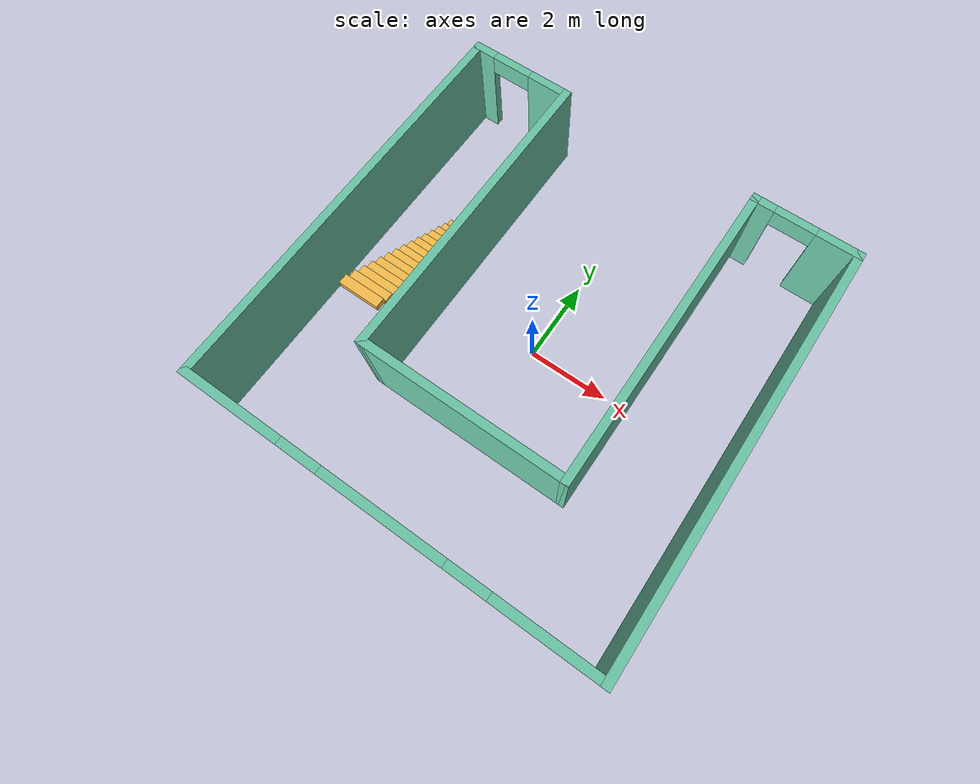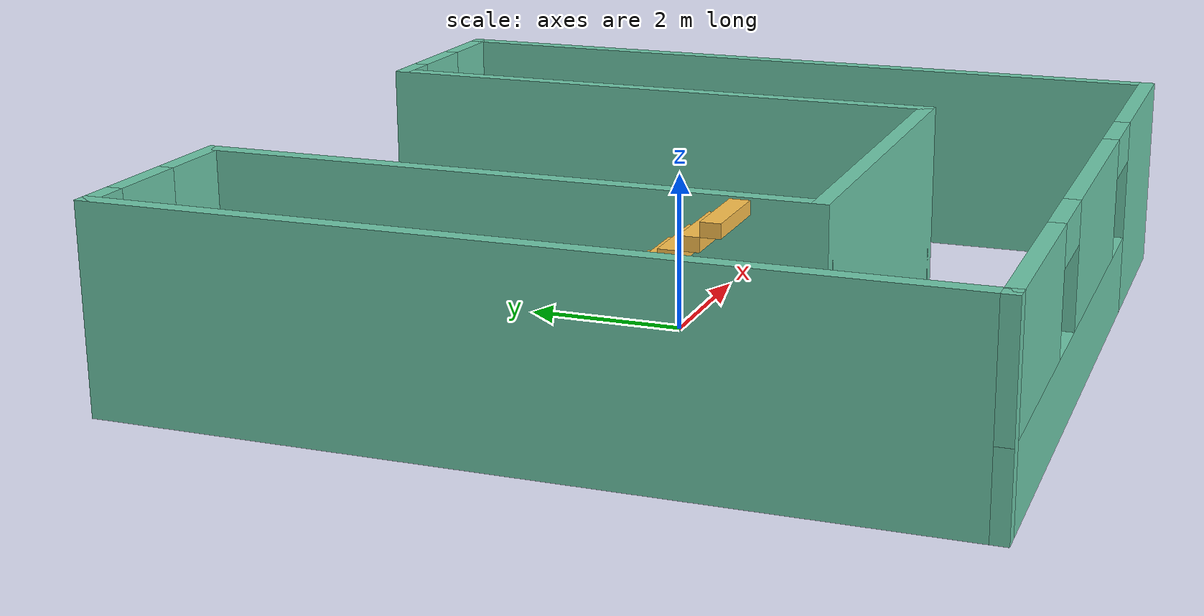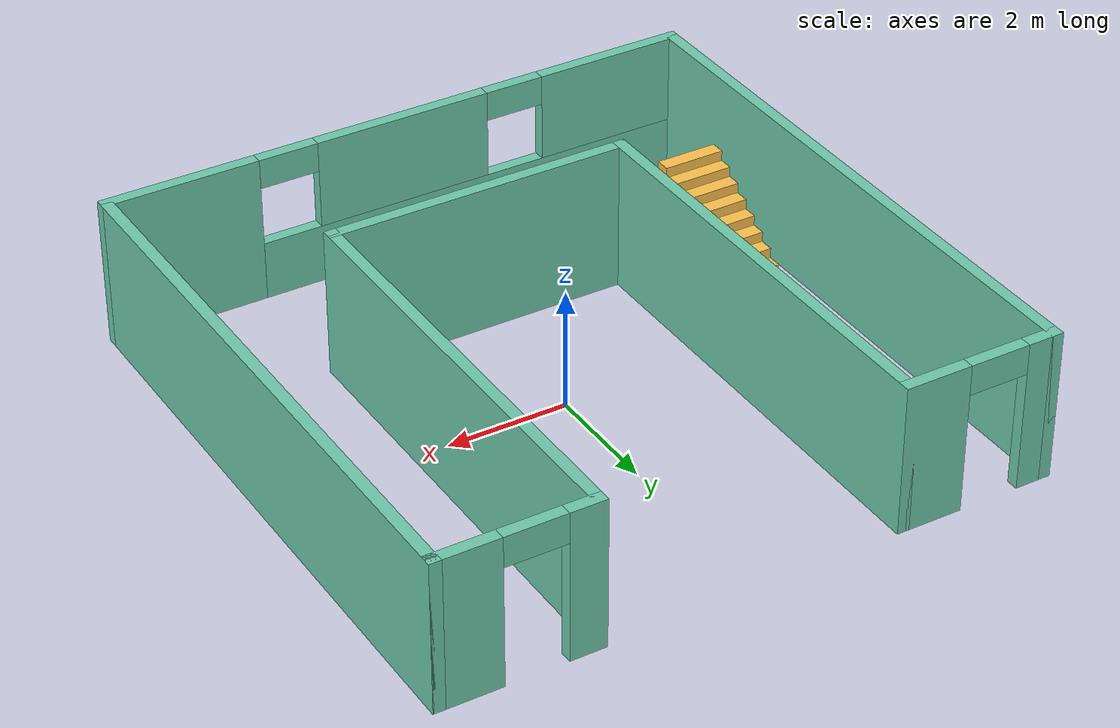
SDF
<?xml version='1.0'?>
<sdf version='1.7'>
  <model name='mybuilding'>
    <pose>0 0 0 0 -0 0</pose>
    <link name='Stairs_0'>
      <visual name='Stairs_0_Visual_0'>
        <pose>-3.2 1.63333 0.083333 0 -0 0</pose>
        <geometry>
          <box>
            <size>1 0.233333 0.166667</size>
          </box>
        </geometry>
        <material>
          <script>
            <uri>file://media/materials/scripts/gazebo.material</uri>
            <name>Gazebo/Grey</name>
          </script>
          <ambient>1 0.764706 0.305882 1</ambient>
        </material>
        <meta>
          <layer>0</layer>
        </meta>
      </visual>
      <collision name='Stairs_0_Collision_0'>
        <geometry>
          <box>
            <size>1 0.233333 0.166667</size>
          </box>
        </geometry>
        <pose>-3.2 1.63333 0.083333 0 -0 0</pose>
      </collision>
      <visual name='Stairs_0_Visual_1'>
        <pose>-3.2 1.4 0.25 0 -0 0</pose>
        <geometry>
          <box>
            <size>1 0.233333 0.166667</size>
          </box>
        </geometry>
        <material>
          <script>
            <uri>file://media/materials/scripts/gazebo.material</uri>
            <name>Gazebo/Grey</name>
          </script>
          <ambient>1 0.764706 0.305882 1</ambient>
        </material>
        <meta>
          <layer>0</layer>
        </meta>
      </visual>
      <collision name='Stairs_0_Collision_1'>
        <geometry>
          <box>
            <size>1 0.233333 0.166667</size>
          </box>
        </geometry>
        <pose>-3.2 1.4 0.25 0 -0 0</pose>
      </collision>
      <visual name='Stairs_0_Visual_2'>
        <pose>-3.2 1.16667 0.416667 0 -0 0</pose>
        <geometry>
          <box>
            <size>1 0.233333 0.166667</size>
          </box>
        </geometry>
        <material>
          <script>
            <uri>file://media/materials/scripts/gazebo.material</uri>
            <name>Gazebo/Grey</name>
          </script>
          <ambient>1 0.764706 0.305882 1</ambient>
        </material>
        <meta>
          <layer>0</layer>
        </meta>
      </visual>
      <collision name='Stairs_0_Collision_2'>
        <geometry>
          <box>
            <size>1 0.233333 0.166667</size>
          </box>
        </geometry>
        <pose>-3.2 1.16667 0.416667 0 -0 0</pose>
      </collision>
      <visual name='Stairs_0_Visual_3'>
        <pose>-3.2 0.933333 0.583333 0 -0 0</pose>
        <geometry>
          <box>
            <size>1 0.233333 0.166667</size>
          </box>
        </geometry>
        <material>
          <script>
            <uri>file://media/materials/scripts/gazebo.material</uri>
            <name>Gazebo/Grey</name>
          </script>
          <ambient>1 0.764706 0.305882 1</ambient>
        </material>
        <meta>
          <layer>0</layer>
        </meta>
      </visual>
      <collision name='Stairs_0_Collision_3'>
        <geometry>
          <box>
            <size>1 0.233333 0.166667</size>
          </box>
        </geometry>
        <pose>-3.2 0.933333 0.583333 0 -0 0</pose>
      </collision>
      <visual name='Stairs_0_Visual_4'>
        <pose>-3.2 0.7 0.75 0 -0 0</pose>
        <geometry>
          <box>
            <size>1 0.233333 0.166667</size>
          </box>
        </geometry>
        <material>
          <script>
            <uri>file://media/materials/scripts/gazebo.material</uri>
            <name>Gazebo/Grey</name>
          </script>
          <ambient>1 0.764706 0.305882 1</ambient>
        </material>
        <meta>
          <layer>0</layer>
        </meta>
      </visual>
      <collision name='Stairs_0_Collision_4'>
        <geometry>
          <box>
            <size>1 0.233333 0.166667</size>
          </box>
        </geometry>
        <pose>-3.2 0.7 0.75 0 -0 0</pose>
      </collision>
      <visual name='Stairs_0_Visual_5'>
        <pose>-3.2 0.466667 0.916667 0 -0 0</pose>
        <geometry>
          <box>
            <size>1 0.233333 0.166667</size>
          </box>
        </geometry>
        <material>
          <script>
            <uri>file://media/materials/scripts/gazebo.material</uri>
            <name>Gazebo/Grey</name>
          </script>
          <ambient>1 0.764706 0.305882 1</ambient>
        </material>
        <meta>
          <layer>0</layer>
        </meta>
      </visual>
      <collision name='Stairs_0_Collision_5'>
        <geometry>
          <box>
            <size>1 0.233333 0.166667</size>
          </box>
        </geometry>
        <pose>-3.2 0.466667 0.916667 0 -0 0</pose>
      </collision>
      <visual name='Stairs_0_Visual_6'>
        <pose>-3.2 0.233333 1.08333 0 -0 0</pose>
        <geometry>
          <box>
            <size>1 0.233333 0.166667</size>
          </box>
        </geometry>
        <material>
          <script>
            <uri>file://media/materials/scripts/gazebo.material</uri>
            <name>Gazebo/Grey</name>
          </script>
          <ambient>1 0.764706 0.305882 1</ambient>
        </material>
        <meta>
          <layer>0</layer>
        </meta>
      </visual>
      <collision name='Stairs_0_Collision_6'>
        <geometry>
          <box>
            <size>1 0.233333 0.166667</size>
          </box>
        </geometry>
        <pose>-3.2 0.233333 1.08333 0 -0 0</pose>
      </collision>
      <visual name='Stairs_0_Visual_7'>
        <pose>-3.2 0 1.25 0 -0 0</pose>
        <geometry>
          <box>
            <size>1 0.233333 0.166667</size>
          </box>
        </geometry>
        <material>
          <script>
            <uri>file://media/materials/scripts/gazebo.material</uri>
            <name>Gazebo/Grey</name>
          </script>
          <ambient>1 0.764706 0.305882 1</ambient>
        </material>
        <meta>
          <layer>0</layer>
        </meta>
      </visual>
      <collision name='Stairs_0_Collision_7'>
        <geometry>
          <box>
            <size>1 0.233333 0.166667</size>
          </box>
        </geometry>
        <pose>-3.2 0 1.25 0 -0 0</pose>
      </collision>
      <visual name='Stairs_0_Visual_8'>
        <pose>-3.2 -0.233333 1.41667 0 -0 0</pose>
        <geometry>
          <box>
            <size>1 0.233333 0.166667</size>
          </box>
        </geometry>
        <material>
          <script>
            <uri>file://media/materials/scripts/gazebo.material</uri>
            <name>Gazebo/Grey</name>
          </script>
          <ambient>1 0.764706 0.305882 1</ambient>
        </material>
        <meta>
          <layer>0</layer>
        </meta>
      </visual>
      <collision name='Stairs_0_Collision_8'>
        <geometry>
          <box>
            <size>1 0.233333 0.166667</size>
          </box>
        </geometry>
        <pose>-3.2 -0.233333 1.41667 0 -0 0</pose>
      </collision>
      <visual name='Stairs_0_Visual_9'>
        <pose>-3.2 -0.466667 1.58333 0 -0 0</pose>
        <geometry>
          <box>
            <size>1 0.233333 0.166667</size>
          </box>
        </geometry>
        <material>
          <script>
            <uri>file://media/materials/scripts/gazebo.material</uri>
            <name>Gazebo/Grey</name>
          </script>
          <ambient>1 0.764706 0.305882 1</ambient>
        </material>
        <meta>
          <layer>0</layer>
        </meta>
      </visual>
      <collision name='Stairs_0_Collision_9'>
        <geometry>
          <box>
            <size>1 0.233333 0.166667</size>
          </box>
        </geometry>
        <pose>-3.2 -0.466667 1.58333 0 -0 0</pose>
      </collision>
      <visual name='Stairs_0_Visual_10'>
        <pose>-3.2 -0.7 1.75 0 -0 0</pose>
        <geometry>
          <box>
            <size>1 0.233333 0.166667</size>
          </box>
        </geometry>
        <material>
          <script>
            <uri>file://media/materials/scripts/gazebo.material</uri>
            <name>Gazebo/Grey</name>
          </script>
          <ambient>1 0.764706 0.305882 1</ambient>
        </material>
        <meta>
          <layer>0</layer>
        </meta>
      </visual>
      <collision name='Stairs_0_Collision_10'>
        <geometry>
          <box>
            <size>1 0.233333 0.166667</size>
          </box>
        </geometry>
        <pose>-3.2 -0.7 1.75 0 -0 0</pose>
      </collision>
      <visual name='Stairs_0_Visual_11'>
        <pose>-3.2 -0.933333 1.91667 0 -0 0</pose>
        <geometry>
          <box>
            <size>1 0.233333 0.166667</size>
          </box>
        </geometry>
        <material>
          <script>
            <uri>file://media/materials/scripts/gazebo.material</uri>
            <name>Gazebo/Grey</name>
          </script>
          <ambient>1 0.764706 0.305882 1</ambient>
        </material>
        <meta>
          <layer>0</layer>
        </meta>
      </visual>
      <collision name='Stairs_0_Collision_11'>
        <geometry>
          <box>
            <size>1 0.233333 0.166667</size>
          </box>
        </geometry>
        <pose>-3.2 -0.933333 1.91667 0 -0 0</pose>
      </collision>
      <visual name='Stairs_0_Visual_12'>
        <pose>-3.2 -1.16667 2.08333 0 -0 0</pose>
        <geometry>
          <box>
            <size>1 0.233333 0.166667</size>
          </box>
        </geometry>
        <material>
          <script>
            <uri>file://media/materials/scripts/gazebo.material</uri>
            <name>Gazebo/Grey</name>
          </script>
          <ambient>1 0.764706 0.305882 1</ambient>
        </material>
        <meta>
          <layer>0</layer>
        </meta>
      </visual>
      <collision name='Stairs_0_Collision_12'>
        <geometry>
          <box>
            <size>1 0.233333 0.166667</size>
          </box>
        </geometry>
        <pose>-3.2 -1.16667 2.08333 0 -0 0</pose>
      </collision>
      <visual name='Stairs_0_Visual_13'>
        <pose>-3.2 -1.4 2.25 0 -0 0</pose>
        <geometry>
          <box>
            <size>1 0.233333 0.166667</size>
          </box>
        </geometry>
        <material>
          <script>
            <uri>file://media/materials/scripts/gazebo.material</uri>
            <name>Gazebo/Grey</name>
          </script>
          <ambient>1 0.764706 0.305882 1</ambient>
        </material>
        <meta>
          <layer>0</layer>
        </meta>
      </visual>
      <collision name='Stairs_0_Collision_13'>
        <geometry>
          <box>
            <size>1 0.233333 0.166667</size>
          </box>
        </geometry>
        <pose>-3.2 -1.4 2.25 0 -0 0</pose>
      </collision>
      <visual name='Stairs_0_Visual_14'>
        <pose>-3.2 -1.63333 2.41667 0 -0 0</pose>
        <geometry>
          <box>
            <size>1 0.233333 0.166667</size>
          </box>
        </geometry>
        <material>
          <script>
            <uri>file://media/materials/scripts/gazebo.material</uri>
            <name>Gazebo/Grey</name>
          </script>
          <ambient>1 0.764706 0.305882 1</ambient>
        </material>
        <meta>
          <layer>0</layer>
        </meta>
      </visual>
      <collision name='Stairs_0_Collision_14'>
        <geometry>
          <box>
            <size>1 0.233333 0.166667</size>
          </box>
        </geometry>
        <pose>-3.2 -1.63333 2.41667 0 -0 0</pose>
      </collision>
    </link>
    <link name='Wall_35'>
      <pose>-3.75 5 0 0 -0 0</pose>
      <visual name='Wall_35_Visual_0'>
        <pose>-1.05 0 1.25 0 -0 0</pose>
        <geometry>
          <box>
            <size>0.6 0.2 2.5</size>
          </box>
        </geometry>
        <material>
          <script>
            <uri>file://media/materials/scripts/gazebo.material</uri>
            <name>Gazebo/Grey</name>
          </script>
          <ambient>0.435294 0.796078 0.67451 1</ambient>
        </material>
        <meta>
          <layer>0</layer>
        </meta>
      </visual>
      <collision name='Wall_35_Collision_0'>
        <geometry>
          <box>
            <size>0.6 0.2 2.5</size>
          </box>
        </geometry>
        <pose>-1.05 0 1.25 0 -0 0</pose>
      </collision>
      <visual name='Wall_35_Visual_1'>
        <pose>0.8 0 1.25 0 -0 0</pose>
        <geometry>
          <box>
            <size>1.1 0.2 2.5</size>
          </box>
        </geometry>
        <material>
          <script>
            <uri>file://media/materials/scripts/gazebo.material</uri>
            <name>Gazebo/Grey</name>
          </script>
          <ambient>0.435294 0.796078 0.67451 1</ambient>
        </material>
        <meta>
          <layer>0</layer>
        </meta>
      </visual>
      <collision name='Wall_35_Collision_1'>
        <geometry>
          <box>
            <size>1.1 0.2 2.5</size>
          </box>
        </geometry>
        <pose>0.8 0 1.25 0 -0 0</pose>
      </collision>
      <visual name='Wall_35_Visual_2'>
        <pose>-0.25 0 2.25 0 -0 0</pose>
        <geometry>
          <box>
            <size>1 0.2 0.5</size>
          </box>
        </geometry>
        <material>
          <script>
            <uri>file://media/materials/scripts/gazebo.material</uri>
            <name>Gazebo/Grey</name>
          </script>
          <ambient>0.435294 0.796078 0.67451 1</ambient>
        </material>
        <meta>
          <layer>0</layer>
        </meta>
      </visual>
      <collision name='Wall_35_Collision_2'>
        <geometry>
          <box>
            <size>1 0.2 0.5</size>
          </box>
        </geometry>
        <pose>-0.25 0 2.25 0 -0 0</pose>
      </collision>
    </link>
    <link name='Wall_36'>
      <collision name='Wall_36_Collision'>
        <geometry>
          <box>
            <size>7.7 0.2 2.5</size>
          </box>
        </geometry>
        <pose>0 0 1.25 0 -0 0</pose>
      </collision>
      <visual name='Wall_36_Visual'>
        <pose>0 0 1.25 0 -0 0</pose>
        <geometry>
          <box>
            <size>7.7 0.2 2.5</size>
          </box>
        </geometry>
        <material>
          <script>
            <uri>file://media/materials/scripts/gazebo.material</uri>
            <name>Gazebo/Grey</name>
          </script>
          <ambient>0.435294 0.796078 0.67451 1</ambient>
        </material>
        <meta>
          <layer>0</layer>
        </meta>
      </visual>
      <pose>-2.5 1.25 0 0 -0 -1.5708</pose>
    </link>
    <link name='Wall_37'>
      <collision name='Wall_37_Collision'>
        <geometry>
          <box>
            <size>5.2 0.2 2.5</size>
          </box>
        </geometry>
        <pose>0 0 1.25 0 -0 0</pose>
      </collision>
      <visual name='Wall_37_Visual'>
        <pose>0 0 1.25 0 -0 0</pose>
        <geometry>
          <box>
            <size>5.2 0.2 2.5</size>
          </box>
        </geometry>
        <material>
          <script>
            <uri>file://media/materials/scripts/gazebo.material</uri>
            <name>Gazebo/Grey</name>
          </script>
          <ambient>0.435294 0.796078 0.67451 1</ambient>
        </material>
        <meta>
          <layer>0</layer>
        </meta>
      </visual>
      <pose>0 -2.5 0 0 -0 0</pose>
    </link>
    <link name='Wall_38'>
      <collision name='Wall_38_Collision'>
        <geometry>
          <box>
            <size>7.7 0.2 2.5</size>
          </box>
        </geometry>
        <pose>0 0 1.25 0 -0 0</pose>
      </collision>
      <visual name='Wall_38_Visual'>
        <pose>0 0 1.25 0 -0 0</pose>
        <geometry>
          <box>
            <size>7.7 0.2 2.5</size>
          </box>
        </geometry>
        <material>
          <script>
            <uri>file://media/materials/scripts/gazebo.material</uri>
            <name>Gazebo/Grey</name>
          </script>
          <ambient>0.435294 0.796078 0.67451 1</ambient>
        </material>
        <meta>
          <layer>0</layer>
        </meta>
      </visual>
      <pose>2.5 1.25 0 0 -0 1.5708</pose>
    </link>
    <link name='Wall_39'>
      <pose>3.75 5 0 0 -0 0</pose>
      <visual name='Wall_39_Visual_0'>
        <pose>-1.05 0 1.25 0 -0 0</pose>
        <geometry>
          <box>
            <size>0.6 0.2 2.5</size>
          </box>
        </geometry>
        <material>
          <script>
            <uri>file://media/materials/scripts/gazebo.material</uri>
            <name>Gazebo/Grey</name>
          </script>
          <ambient>0.435294 0.796078 0.67451 1</ambient>
        </material>
        <meta>
          <layer>0</layer>
        </meta>
      </visual>
      <collision name='Wall_39_Collision_0'>
        <geometry>
          <box>
            <size>0.6 0.2 2.5</size>
          </box>
        </geometry>
        <pose>-1.05 0 1.25 0 -0 0</pose>
      </collision>
      <visual name='Wall_39_Visual_1'>
        <pose>0.8 0 1.25 0 -0 0</pose>
        <geometry>
          <box>
            <size>1.1 0.2 2.5</size>
          </box>
        </geometry>
        <material>
          <script>
            <uri>file://media/materials/scripts/gazebo.material</uri>
            <name>Gazebo/Grey</name>
          </script>
          <ambient>0.435294 0.796078 0.67451 1</ambient>
        </material>
        <meta>
          <layer>0</layer>
        </meta>
      </visual>
      <collision name='Wall_39_Collision_1'>
        <geometry>
          <box>
            <size>1.1 0.2 2.5</size>
          </box>
        </geometry>
        <pose>0.8 0 1.25 0 -0 0</pose>
      </collision>
      <visual name='Wall_39_Visual_2'>
        <pose>-0.25 0 2.25 0 -0 0</pose>
        <geometry>
          <box>
            <size>1 0.2 0.5</size>
          </box>
        </geometry>
        <material>
          <script>
            <uri>file://media/materials/scripts/gazebo.material</uri>
            <name>Gazebo/Grey</name>
          </script>
          <ambient>0.435294 0.796078 0.67451 1</ambient>
        </material>
        <meta>
          <layer>0</layer>
        </meta>
      </visual>
      <collision name='Wall_39_Collision_2'>
        <geometry>
          <box>
            <size>1 0.2 0.5</size>
          </box>
        </geometry>
        <pose>-0.25 0 2.25 0 -0 0</pose>
      </collision>
    </link>
    <link name='Wall_40'>
      <collision name='Wall_40_Collision'>
        <geometry>
          <box>
            <size>10.2 0.2 2.5</size>
          </box>
        </geometry>
        <pose>0 0 1.25 0 -0 0</pose>
      </collision>
      <visual name='Wall_40_Visual'>
        <pose>0 0 1.25 0 -0 0</pose>
        <geometry>
          <box>
            <size>10.2 0.2 2.5</size>
          </box>
        </geometry>
        <material>
          <script>
            <uri>file://media/materials/scripts/gazebo.material</uri>
            <name>Gazebo/Grey</name>
          </script>
          <ambient>0.435294 0.796078 0.67451 1</ambient>
        </material>
        <meta>
          <layer>0</layer>
        </meta>
      </visual>
      <pose>5 0 0 0 -0 -1.5708</pose>
    </link>
    <link name='Wall_41'>
      <pose>0 -5 0 0 -0 3.14159</pose>
      <visual name='Wall_41_Visual_0'>
        <pose>-3.8 0 1.25 0 -0 0</pose>
        <geometry>
          <box>
            <size>2.6 0.2 2.5</size>
          </box>
        </geometry>
        <material>
          <script>
            <uri>file://media/materials/scripts/gazebo.material</uri>
            <name>Gazebo/Grey</name>
          </script>
          <ambient>0.435294 0.796078 0.67451 1</ambient>
        </material>
        <meta>
          <layer>0</layer>
        </meta>
      </visual>
      <collision name='Wall_41_Collision_0'>
        <geometry>
          <box>
            <size>2.6 0.2 2.5</size>
          </box>
        </geometry>
        <pose>-3.8 0 1.25 0 -0 0</pose>
      </collision>
      <visual name='Wall_41_Visual_1'>
        <pose>1.3 0 0.5 0 -0 0</pose>
        <geometry>
          <box>
            <size>7.6 0.2 1</size>
          </box>
        </geometry>
        <material>
          <script>
            <uri>file://media/materials/scripts/gazebo.material</uri>
            <name>Gazebo/Grey</name>
          </script>
          <ambient>0.435294 0.796078 0.67451 1</ambient>
        </material>
        <meta>
          <layer>0</layer>
        </meta>
      </visual>
      <collision name='Wall_41_Collision_1'>
        <geometry>
          <box>
            <size>7.6 0.2 1</size>
          </box>
        </geometry>
        <pose>1.3 0 0.5 0 -0 0</pose>
      </collision>
      <visual name='Wall_41_Visual_2'>
        <pose>0 0 1.75 0 -0 0</pose>
        <geometry>
          <box>
            <size>3 0.2 1.5</size>
          </box>
        </geometry>
        <material>
          <script>
            <uri>file://media/materials/scripts/gazebo.material</uri>
            <name>Gazebo/Grey</name>
          </script>
          <ambient>0.435294 0.796078 0.67451 1</ambient>
        </material>
        <meta>
          <layer>0</layer>
        </meta>
      </visual>
      <collision name='Wall_41_Collision_2'>
        <geometry>
          <box>
            <size>3 0.2 1.5</size>
          </box>
        </geometry>
        <pose>0 0 1.75 0 -0 0</pose>
      </collision>
      <visual name='Wall_41_Visual_3'>
        <pose>3.8 0 1.75 0 -0 0</pose>
        <geometry>
          <box>
            <size>2.6 0.2 1.5</size>
          </box>
        </geometry>
        <material>
          <script>
            <uri>file://media/materials/scripts/gazebo.material</uri>
            <name>Gazebo/Grey</name>
          </script>
          <ambient>0.435294 0.796078 0.67451 1</ambient>
        </material>
        <meta>
          <layer>0</layer>
        </meta>
      </visual>
      <collision name='Wall_41_Collision_3'>
        <geometry>
          <box>
            <size>2.6 0.2 1.5</size>
          </box>
        </geometry>
        <pose>3.8 0 1.75 0 -0 0</pose>
      </collision>
      <visual name='Wall_41_Visual_4'>
        <pose>-2 0 2.25 0 -0 0</pose>
        <geometry>
          <box>
            <size>1 0.2 0.5</size>
          </box>
        </geometry>
        <material>
          <script>
            <uri>file://media/materials/scripts/gazebo.material</uri>
            <name>Gazebo/Grey</name>
          </script>
          <ambient>0.435294 0.796078 0.67451 1</ambient>
        </material>
        <meta>
          <layer>0</layer>
        </meta>
      </visual>
      <collision name='Wall_41_Collision_4'>
        <geometry>
          <box>
            <size>1 0.2 0.5</size>
          </box>
        </geometry>
        <pose>-2 0 2.25 0 -0 0</pose>
      </collision>
      <visual name='Wall_41_Visual_5'>
        <pose>2 0 2.25 0 -0 0</pose>
        <geometry>
          <box>
            <size>1 0.2 0.5</size>
          </box>
        </geometry>
        <material>
          <script>
            <uri>file://media/materials/scripts/gazebo.material</uri>
            <name>Gazebo/Grey</name>
          </script>
          <ambient>0.435294 0.796078 0.67451 1</ambient>
        </material>
        <meta>
          <layer>0</layer>
        </meta>
      </visual>
      <collision name='Wall_41_Collision_5'>
        <geometry>
          <box>
            <size>1 0.2 0.5</size>
          </box>
        </geometry>
        <pose>2 0 2.25 0 -0 0</pose>
      </collision>
    </link>
    <link name='Wall_42'>
      <collision name='Wall_42_Collision'>
        <geometry>
          <box>
            <size>10.2 0.2 2.5</size>
          </box>
        </geometry>
        <pose>0 0 1.25 0 -0 0</pose>
      </collision>
      <visual name='Wall_42_Visual'>
        <pose>0 0 1.25 0 -0 0</pose>
        <geometry>
          <box>
            <size>10.2 0.2 2.5</size>
          </box>
        </geometry>
        <material>
          <script>
            <uri>file://media/materials/scripts/gazebo.material</uri>
            <name>Gazebo/Grey</name>
          </script>
          <ambient>0.435294 0.796078 0.67451 1</ambient>
        </material>
        <meta>
          <layer>0</layer>
        </meta>
      </visual>
      <pose>-5 0 0 0 -0 1.5708</pose>
    </link>
    <static>1</static>
  </model>
</sdf>
